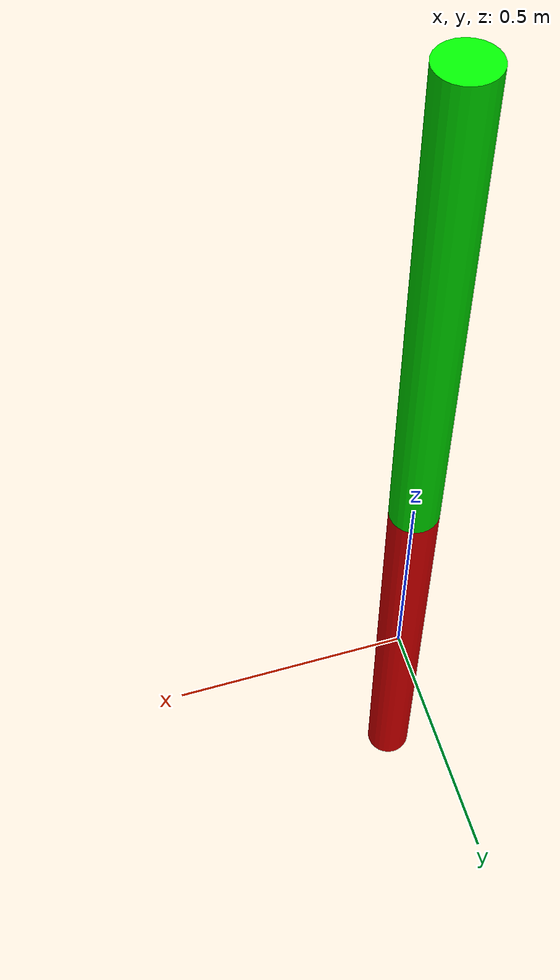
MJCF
<mujoco>
  <option gravity = "0 0 -9.81" integrator="implicitfast" timestep="0.01"/>
   <worldbody>
      <light diffuse="0 0 0" pos="0 0 10" dir="0 0 -1"/>
      <body pos="0 0 0" euler="0 180 0">
         <joint name="joint0" type="hinge" axis = "0 -1 0" pos = "0 0 0.5"/>
         <geom type="cylinder" size="0.05 0.5" rgba="1 0 0 1" mass="1"/>
         <body pos="0 -0.0 -1" euler="0 0 0">
           <joint name="joint1" type="hinge" axis = "0 -1 0" pos = "0 0 0.5"/>
           <geom type="cylinder" size="0.05 0.5" rgba="0 1 0 1" mass="1"/>
         </body>
      </body>
    </worldbody>
   <actuator>
     <motor name="torque1" joint="joint1"  gear="1" />
   </actuator>
</mujoco>
